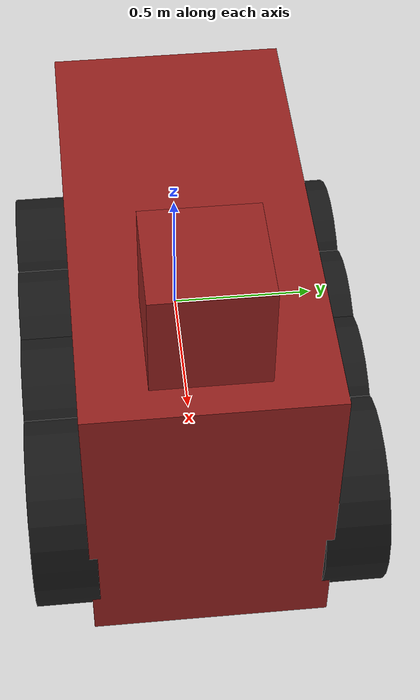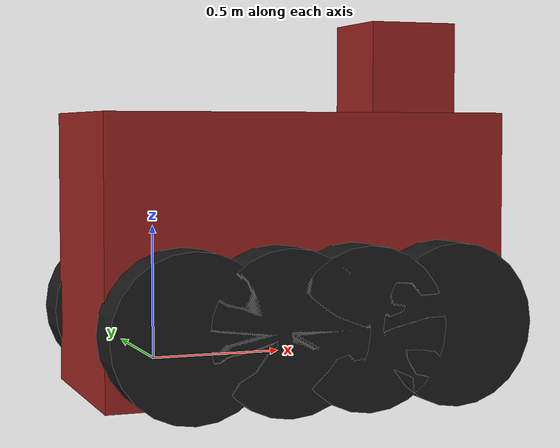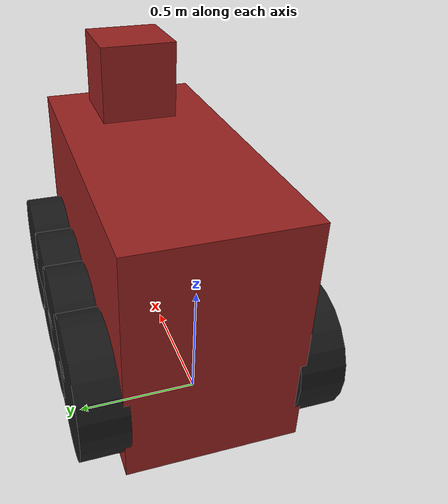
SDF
<?xml version="1.0" ?>
<sdf version="1.8">
        <model name='Flip' canonical_link='chassis'>
            <pose>0 0 0 0 0 0</pose>   <!--the pose is relative to the world by default-->

            <!--Toegevoegd voor het rijden.-->
            <plugin
                filename="gz-sim-diff-drive-system"
                name="gz::sim::systems::DiffDrive">

                <left_joint>firstLeftWheelJoint</left_joint>
                <left_joint>secondLeftWheelJoint</left_joint>
                <left_joint>thirdLeftWheelJoint</left_joint>
                <left_joint>fourthLeftWheelJoint</left_joint>

                <right_joint>firstRightWheelJoint</right_joint>
                <right_joint>secondRightWheelJoint</right_joint>
                <right_joint>thirdRightWheelJoint</right_joint>
                <right_joint>fourthRightWheelJoint</right_joint>

                <wheel_separation>1.7</wheel_separation>
                <wheel_radius>0.4</wheel_radius>
                <odom_publish_frequency>1</odom_publish_frequency>
                <topic>cmd_vel</topic>
            </plugin>

            <!--Chassis-->
            <link name='chassis'>
                <pose relative_to='__model__'>0.5 0 0.4 0 0 0</pose>
                <inertial> <!--inertial properties of the link mass, inertia matix-->
                    <mass>1.14395</mass>
                    <inertia>
                        <ixx>0.095329</ixx>
                        <ixy>0</ixy>
                        <ixz>0</ixz>
                        <iyy>0.381317</iyy>
                        <iyz>0</iyz>
                        <izz>0.476646</izz>
                    </inertia>
                </inertial>
                <visual name='visual'>
                    <geometry>
                        <box>
                            <size>1.55 0.75 1.05</size> <!--Length, width, height-->
                        </box>
                    </geometry>
                    <!--Color of the link-->
                    <material>
                        <ambient> 0.4 0.08 0.08 1.0</ambient>
                        <diffuse> 0.59 0.13 0.12 1.0</diffuse>
                        <specular>0.1 0.1 0.1 1.0</specular>
                    </material>
                </visual>
                <collision name='collision'>
                    <geometry>
                        <box>
                            <size>1.55 0.75 1.05</size>
                        </box>
                    </geometry>
                </collision>
            </link>

        <link name='front_block'>
        <pose relative_to='chassis'>0.50 0 0.70 0 0 0</pose>
        <inertial>
            <mass>0.3</mass>
            <inertia>
                <ixx>0.01</ixx>
                <ixy>0</ixy>
                <ixz>0</ixz>
                <iyy>0.01</iyy>
                <iyz>0</iyz>
                <izz>0.01</izz>
            </inertia>
        </inertial>

        <visual name='visual'>
            <geometry>
                <box>
                    <size>0.35 0.35 0.35</size>
                </box>
            </geometry>
            <material>
                <ambient> 0.4 0.08 0.08 1.0</ambient>
                <diffuse> 0.59 0.13 0.12 1.0</diffuse>
                <specular>0.1 0.1 0.1 1.0</specular>
            </material>
        </visual>

            <collision name='collision'>
                <geometry>
                    <box>
                        <size>0.5 0.5 0.5</size>
                    </box>
                </geometry>
            </collision>

    <sensor name='gpu_lidar' type='gpu_lidar'>
        <pose relative_to='lidar_frame'>0 0 0 0 0 0</pose>
        <topic>lidar</topic>
        <update_rate>10</update_rate>
                    <ray>
                        <scan>
                            <horizontal>
                                <samples>1000</samples>
                                <resolution>1</resolution>
                                <min_angle>-3.14159</min_angle>
                                <max_angle>3.14159</max_angle>
                            </horizontal>
                            <vertical>
                                <samples>1</samples>
                                <resolution>0.01</resolution>
                                <min_angle>0</min_angle>
                                <max_angle>0</max_angle>
                            </vertical>
                        </scan>
                        <range>
                            <min>0.08</min>
                            <max>10.0</max>
                            <resolution>0.01</resolution>
                        </range>
                    </ray>
                    <always_on>1</always_on>
                    <visualize>true</visualize>
                </sensor>

        <sensor name="camera" type="camera">
        <pose>0.175 0 -0.10 0 0 0</pose>
        <topic>camera</topic>
        <update_rate>30</update_rate>
        <camera>
            <!-- Veranderd van 1.047 (60 graden) naar 1.5708 (90 graden) -->
            <horizontal_fov>1.5708</horizontal_fov>
            <image>
                <width>640</width>
                <height>480</height>
                <format>R8G8B8</format>
            </image>
            <clip>
                <near>0.1</near>
                <far>100</far>
            </clip>
        </camera>
        <always_on>1</always_on>
        <visualize>true</visualize>
        </sensor>

            </link>

            <!-- Vast koppelen -->
            <joint name='front_block_fixed_joint' type='fixed'>
                <parent>chassis</parent>
                <child>front_block</child>
            </joint>

            <!--First left wheel-->
            <link name='firstLeftWheel'>
                <pose relative_to="chassis">0.5 0.45 -0.25 -1.5707 0 0</pose> <!--angles are in radian-->
                <inertial>
                    <mass>1</mass>
                    <inertia>
                        <ixx>0.043333</ixx>
                        <ixy>0</ixy>
                        <ixz>0</ixz>
                        <iyy>0.043333</iyy>
                        <iyz>0</iyz>
                        <izz>0.08</izz>
                    </inertia>
                </inertial>
                <visual name='visual'>
                    <geometry>
                        <cylinder>
                            <radius>0.3</radius>
                            <length>0.2</length>
                        </cylinder>
                    </geometry>
                    <material>
                        <ambient> 0.1 0.1 0.1 0.98</ambient>
                        <diffuse> 0.1 0.1 0.1 0.98</diffuse>
                        <specular>0.2 0.2 0.2 1.0</specular>
                    </material>
                </visual>
                <collision name='collision'>
                    <geometry>
                        <cylinder>
                            <radius>0.3</radius>
                            <length>0.2</length>
                        </cylinder>
                    </geometry>
                </collision>
            </link>

            <!--Left wheel-->
            <link name='secondLeftWheel'>
                <pose relative_to="chassis">0.15 0.45 -0.25 -1.5707 0 0</pose> <!--angles are in radian-->
                <inertial>
                    <mass>1</mass>
                    <inertia>
                        <ixx>0.043333</ixx>
                        <ixy>0</ixy>
                        <ixz>0</ixz>
                        <iyy>0.043333</iyy>
                        <iyz>0</iyz>
                        <izz>0.08</izz>
                    </inertia>
                </inertial>
                <visual name='visual'>
                    <geometry>
                        <cylinder>
                            <radius>0.3</radius>
                            <length>0.2</length>
                        </cylinder>
                    </geometry>
                    <material>
                        <ambient> 0.1 0.1 0.1 0.98</ambient>
                        <diffuse> 0.1 0.1 0.1 0.98</diffuse>
                        <specular>0.2 0.2 0.2 1.0</specular>
                    </material>
                </visual>
                <collision name='collision'>
                    <geometry>
                        <cylinder>
                            <radius>0.3</radius>
                            <length>0.2</length>
                        </cylinder>
                    </geometry>
                </collision>
            </link>

            <link name='thirdLeftWheel'>
                <pose relative_to="chassis">-0.15 0.45 -0.25 -1.5707 0 0</pose> <!--angles are in radian-->
                <inertial>
                    <mass>1</mass>
                    <inertia>
                        <ixx>0.043333</ixx>
                        <ixy>0</ixy>
                        <ixz>0</ixz>
                        <iyy>0.043333</iyy>
                        <iyz>0</iyz>
                        <izz>0.08</izz>
                    </inertia>
                </inertial>
                <visual name='visual'>
                    <geometry>
                        <cylinder>
                            <radius>0.3</radius>
                            <length>0.2</length>
                        </cylinder>
                    </geometry>
                    <material>
                        <ambient> 0.1 0.1 0.1 0.98</ambient>
                        <diffuse> 0.1 0.1 0.1 0.98</diffuse>
                        <specular>0.2 0.2 0.2 1.0</specular>
                    </material>
                </visual>
                <collision name='collision'>
                    <geometry>
                        <cylinder>
                            <radius>0.3</radius>
                            <length>0.2</length>
                        </cylinder>
                    </geometry>
                </collision>
            </link>

            <link name='fourthLeftWheel'>
                <pose relative_to="chassis">-0.5 0.45 -0.25 -1.5707 0 0</pose> <!--angles are in radian-->
                <inertial>
                    <mass>1</mass>
                    <inertia>
                        <ixx>0.043333</ixx>
                        <ixy>0</ixy>
                        <ixz>0</ixz>
                        <iyy>0.043333</iyy>
                        <iyz>0</iyz>
                        <izz>0.08</izz>
                    </inertia>
                </inertial>
                <visual name='visual'>
                    <geometry>
                        <cylinder>
                            <radius>0.3</radius>
                            <length>0.2</length>
                        </cylinder>
                    </geometry>
                    <material>
                        <ambient> 0.1 0.1 0.1 0.98</ambient>
                        <diffuse> 0.1 0.1 0.1 0.98</diffuse>
                        <specular>0.2 0.2 0.2 1.0</specular>
                    </material>
                </visual>
                <collision name='collision'>
                    <geometry>
                        <cylinder>
                            <radius>0.3</radius>
                            <length>0.2</length>
                        </cylinder>
                    </geometry>
                </collision>
            </link>

            <!--The same as left wheels but with different position-->
            <link name='firstRightWheel'>
                <pose relative_to="chassis">0.5 -0.45 -0.25 -1.5707 0 0</pose> <!--angles are in radian-->
                <inertial>
                    <mass>1</mass>
                    <inertia>
                        <ixx>0.043333</ixx>
                        <ixy>0</ixy>
                        <ixz>0</ixz>
                        <iyy>0.043333</iyy>
                        <iyz>0</iyz>
                        <izz>0.08</izz>
                    </inertia>
                </inertial>
                <visual name='visual'>
                    <geometry>
                        <cylinder>
                            <radius>0.3</radius>
                            <length>0.2</length>
                        </cylinder>
                    </geometry>
                    <material>
                        <ambient> 0.1 0.1 0.1 0.98</ambient>
                        <diffuse> 0.1 0.1 0.1 0.98</diffuse>
                        <specular>0.2 0.2 0.2 1.0</specular>
                    </material>
                </visual>
                <collision name='collision'>
                    <geometry>
                        <cylinder>
                            <radius>0.3</radius>
                            <length>0.2</length>
                        </cylinder>
                    </geometry>
                </collision>
            </link>

            <link name='secondRightWheel'>
                <pose relative_to="chassis">0.15 -0.45 -0.25 -1.5707 0 0</pose> <!--angles are in radian-->
                <inertial>
                    <mass>1</mass>
                    <inertia>
                        <ixx>0.043333</ixx>
                        <ixy>0</ixy>
                        <ixz>0</ixz>
                        <iyy>0.043333</iyy>
                        <iyz>0</iyz>
                        <izz>0.08</izz>
                    </inertia>
                </inertial>
                <visual name='visual'>
                    <geometry>
                        <cylinder>
                            <radius>0.3</radius>
                            <length>0.2</length>
                        </cylinder>
                    </geometry>
                    <material>
                        <ambient> 0.1 0.1 0.1 0.98</ambient>
                        <diffuse> 0.1 0.1 0.1 0.98</diffuse>
                        <specular>0.2 0.2 0.2 1.0</specular>
                    </material>
                </visual>
                <collision name='collision'>
                    <geometry>
                        <cylinder>
                            <radius>0.3</radius>
                            <length>0.2</length>
                        </cylinder>
                    </geometry>
                </collision>
            </link>

            <link name='thirdRightWheel'>
                <pose relative_to="chassis">-0.15 -0.45 -0.25 -1.5707 0 0</pose> <!--angles are in radian-->
                <inertial>
                    <mass>1</mass>
                    <inertia>
                        <ixx>0.043333</ixx>
                        <ixy>0</ixy>
                        <ixz>0</ixz>
                        <iyy>0.043333</iyy>
                        <iyz>0</iyz>
                        <izz>0.08</izz>
                    </inertia>
                </inertial>
                <visual name='visual'>
                    <geometry>
                        <cylinder>
                            <radius>0.3</radius>
                            <length>0.2</length>
                        </cylinder>
                    </geometry>
                    <material>
                        <ambient> 0.1 0.1 0.1 0.98</ambient>
                        <diffuse> 0.1 0.1 0.1 0.98</diffuse>
                        <specular>0.2 0.2 0.2 1.0</specular>
                    </material>
                </visual>
                <collision name='collision'>
                    <geometry>
                        <cylinder>
                            <radius>0.3</radius>
                            <length>0.2</length>
                        </cylinder>
                    </geometry>
                </collision>
            </link>

            <link name='fourthRightWheel'>
                <pose relative_to="chassis">-0.5 -0.45 -0.25 -1.5707 0 0</pose> <!--angles are in radian-->
                <inertial>
                    <mass>1</mass>
                    <inertia>
                        <ixx>0.043333</ixx>
                        <ixy>0</ixy>
                        <ixz>0</ixz>
                        <iyy>0.043333</iyy>
                        <iyz>0</iyz>
                        <izz>0.08</izz>
                    </inertia>
                </inertial>
                <visual name='visual'>
                    <geometry>
                        <cylinder>
                            <radius>0.3</radius>
                            <length>0.2</length>
                        </cylinder>
                    </geometry>
                    <material>
                        <ambient> 0.1 0.1 0.1 0.98</ambient>
                        <diffuse> 0.1 0.1 0.1 0.98</diffuse>
                        <specular>0.2 0.2 0.2 1.0</specular>
                    </material>
                </visual>
                <collision name='collision'>
                    <geometry>
                        <cylinder>
                            <radius>0.3</radius>
                            <length>0.2</length>
                        </cylinder>
                    </geometry>
                </collision>
            </link>

            <!--Left wheel joints-->
            <joint name='firstLeftWheelJoint' type='revolute'>
                <pose relative_to='firstLeftWheel'/>
                <parent>chassis</parent>
                <child>firstLeftWheel</child>
                <axis>
                    <xyz expressed_in='__model__'>0 1 0</xyz> <!--can be descired to any frame or even arbitrary frames-->
                    <limit>
                        <lower>-1.79769e+308</lower>    <!--negative infinity-->
                        <upper>1.79769e+308</upper>     <!--positive infinity-->
                    </limit>
                </axis>
            </joint>

            <joint name='secondLeftWheelJoint' type='revolute'>
                <pose relative_to='secondLeftWheel'/>
                <parent>chassis</parent>
                <child>secondLeftWheel</child>
                <axis>
                    <xyz expressed_in='__model__'>0 1 0</xyz> <!--can be descired to any frame or even arbitrary frames-->
                    <limit>
                        <lower>-1.79769e+308</lower>
                        <upper>1.79769e+308</upper>
                    </limit>
                </axis>
            </joint>

            <joint name='thirdLeftWheelJoint' type='revolute'>
                <pose relative_to='thirdLeftWheel'/>
                <parent>chassis</parent>
                <child>thirdLeftWheel</child>
                <axis>
                    <xyz expressed_in='__model__'>0 1 0</xyz> <!--can be descired to any frame or even arbitrary frames-->
                    <limit>
                        <lower>-1.79769e+308</lower>
                        <upper>1.79769e+308</upper>
                    </limit>
                </axis>
            </joint>

            <joint name='fourthLeftWheelJoint' type='revolute'>
                <pose relative_to='fourthLeftWheel'/>
                <parent>chassis</parent>
                <child>fourthLeftWheel</child>
                <axis>
                    <xyz expressed_in='__model__'>0 1 0</xyz> <!--can be descired to any frame or even arbitrary frames-->
                    <limit>
                        <lower>-1.79769e+308</lower>
                        <upper>1.79769e+308</upper>
                    </limit>
                </axis>
            </joint>

            <!--Right wheel joints-->
            <joint name='firstRightWheelJoint' type='revolute'>
                <pose relative_to='firstRightWheel'/>
                <parent>chassis</parent>
                <child>firstRightWheel</child>
                <axis>
                    <xyz expressed_in='__model__'>0 1 0</xyz>
                    <limit>
                        <lower>-1.79769e+308</lower>    <!--negative infinity-->
                        <upper>1.79769e+308</upper>     <!--positive infinity-->
                    </limit>
                </axis>
            </joint>

            <joint name='secondRightWheelJoint' type='revolute'>
                <pose relative_to='secondRightWheel'/>
                <parent>chassis</parent>
                <child>secondRightWheel</child>
                <axis>
                    <xyz expressed_in='__model__'>0 1 0</xyz>
                    <limit>
                        <lower>-1.79769e+308</lower>
                        <upper>1.79769e+308</upper>
                    </limit>
                </axis>
            </joint>

            <joint name='thirdRightWheelJoint' type='revolute'>
                <pose relative_to='thirdRightWheel'/>
                <parent>chassis</parent>
                <child>thirdRightWheel</child>
                <axis>
                    <xyz expressed_in='__model__'>0 1 0</xyz>
                    <limit>
                        <lower>-1.79769e+308</lower>
                        <upper>1.79769e+308</upper>
                    </limit>
                </axis>
            </joint>

            <joint name='fourthRightWheelJoint' type='revolute'>
                <pose relative_to='fourthRightWheel'/>
                <parent>chassis</parent>
                <child>fourthRightWheel</child>
                <axis>
                    <xyz expressed_in='__model__'>0 1 0</xyz>
                    <limit>
                        <lower>-1.79769e+308</lower>
                        <upper>1.79769e+308</upper>
                    </limit>
                </axis>
            </joint>

        </model>
</sdf>
